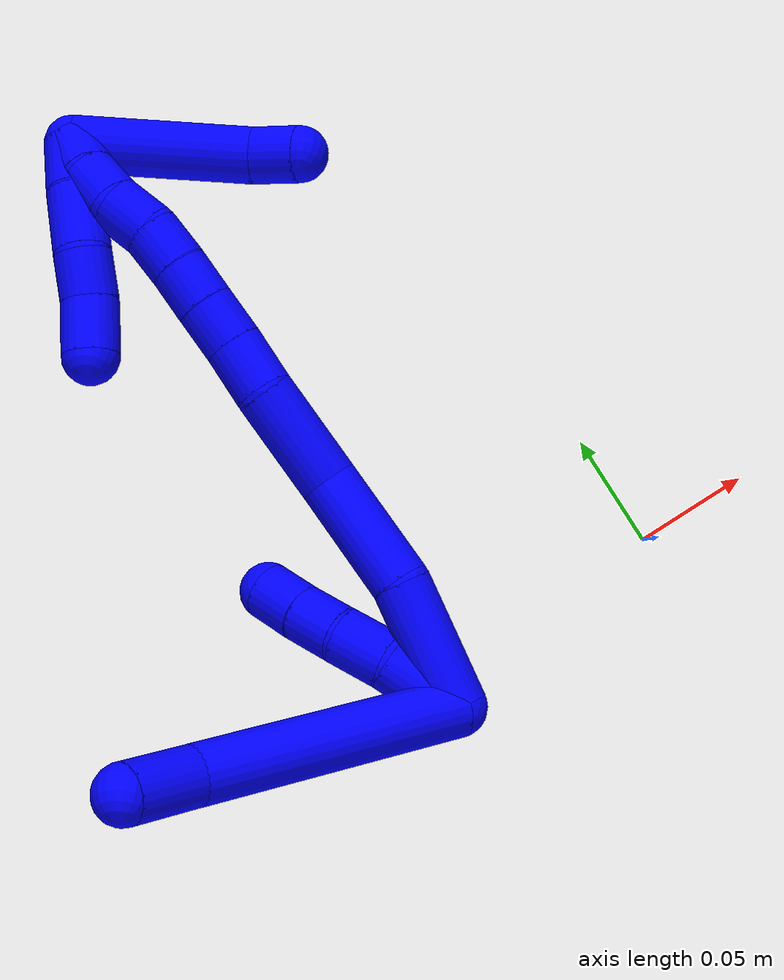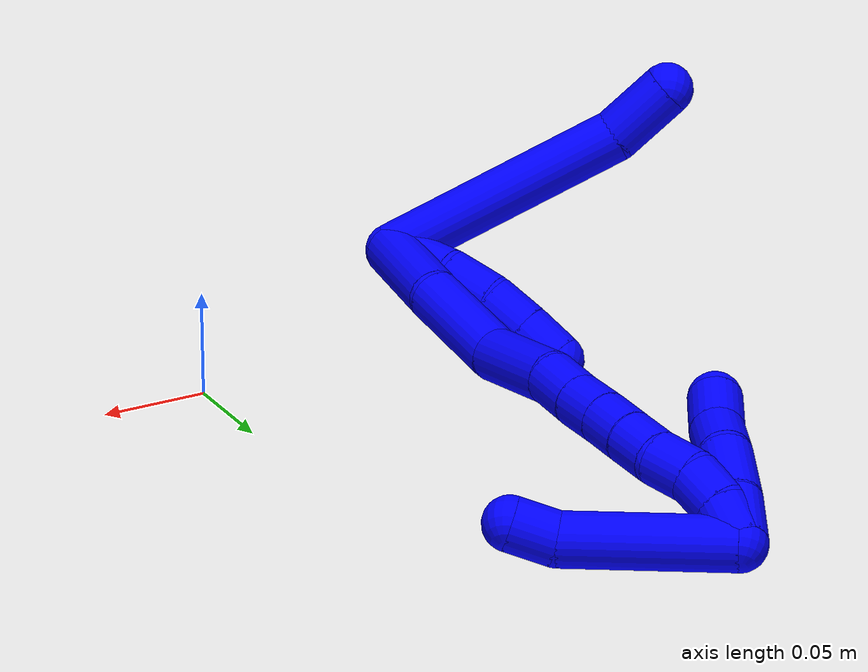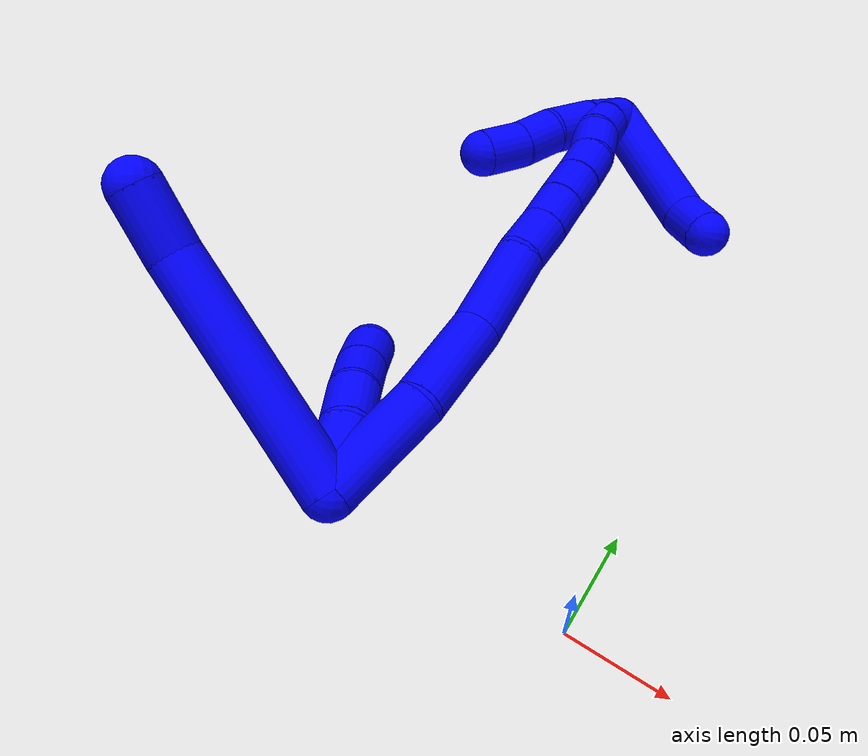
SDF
<sdf version="1.7">
 <world name="default">
  <model name="1">
   <static>0</static>
   <link name="1">
    <collision name="collision-cylinder-e_1_2_8">
     <pose>0.020605 0.04897 0.02482 -1.1017 0.359047 -0.222037</pose>
     <geometry><cylinder><radius>0.0125</radius><length>0.11728</length></cylinder></geometry>
     <surface>
      <friction><ode><mu>1.16</mu><mu2>1.16</mu2><slip1>0</slip1><slip2>0</slip2></ode></friction>
      <contact><ode><kp>1e+06</kp><kd>1</kd><max_vel>0</max_vel><min_depth>0.001</min_depth></ode></contact>
     </surface>
    </collision>
    <visual name="visual-cylinder-e_1_2_8">
     <pose>0.020605 0.04897 0.02482 -1.1017 0.359047 -0.222037</pose>
     <geometry><cylinder><radius>0.0125</radius><length>0.11728</length></cylinder></geometry>
     <material><ambient>0 0 1 1</ambient></material>
    </visual>
    <collision name="collision-cylinder-e_2_8_6">
     <pose>0.050462 0.108729 0.057743 -0.926556 0.601057 -0.30719</pose>
     <geometry><cylinder><radius>0.0125</radius><length>0.03272</length></cylinder></geometry>
     <surface>
      <friction><ode><mu>1.16</mu><mu2>1.16</mu2><slip1>0</slip1><slip2>0</slip2></ode></friction>
      <contact><ode><kp>1e+06</kp><kd>1</kd><max_vel>0</max_vel><min_depth>0.001</min_depth></ode></contact>
     </surface>
    </collision>
    <visual name="visual-cylinder-e_2_8_6">
     <pose>0.050462 0.108729 0.057743 -0.926556 0.601057 -0.30719</pose>
     <geometry><cylinder><radius>0.0125</radius><length>0.03272</length></cylinder></geometry>
     <material><ambient>0 0 1 1</ambient></material>
    </visual>
    <collision name="collision-cylinder-e_1_2_9">
     <pose>0.004299 0.013868 -0.008409 -2.1159 0.259141 -0.454793</pose>
     <geometry><cylinder><radius>0.0125</radius><length>0.033556</length></cylinder></geometry>
     <surface>
      <friction><ode><mu>1.16</mu><mu2>1.16</mu2><slip1>0</slip1><slip2>0</slip2></ode></friction>
      <contact><ode><kp>1e+06</kp><kd>1</kd><max_vel>0</max_vel><min_depth>0.001</min_depth></ode></contact>
     </surface>
    </collision>
    <visual name="visual-cylinder-e_1_2_9">
     <pose>0.004299 0.013868 -0.008409 -2.1159 0.259141 -0.454793</pose>
     <geometry><cylinder><radius>0.0125</radius><length>0.033556</length></cylinder></geometry>
     <material><ambient>0 0 1 1</ambient></material>
    </visual>
    <collision name="collision-cylinder-e_2_9_10">
     <pose>0.009053 0.037991 -0.022993 -2.11271 0.037952 -0.06713</pose>
     <geometry><cylinder><radius>0.0125</radius><length>0.023959</length></cylinder></geometry>
     <surface>
      <friction><ode><mu>1.16</mu><mu2>1.16</mu2><slip1>0</slip1><slip2>0</slip2></ode></friction>
      <contact><ode><kp>1e+06</kp><kd>1</kd><max_vel>0</max_vel><min_depth>0.001</min_depth></ode></contact>
     </surface>
    </collision>
    <visual name="visual-cylinder-e_2_9_10">
     <pose>0.009053 0.037991 -0.022993 -2.11271 0.037952 -0.06713</pose>
     <geometry><cylinder><radius>0.0125</radius><length>0.023959</length></cylinder></geometry>
     <material><ambient>0 0 1 1</ambient></material>
    </visual>
    <collision name="collision-cylinder-e_3_10_11">
     <pose>0.008209 0.05689 -0.035382 -2.19418 -0.121392 0.235988</pose>
     <geometry><cylinder><radius>0.0125</radius><length>0.021449</length></cylinder></geometry>
     <surface>
      <friction><ode><mu>1.16</mu><mu2>1.16</mu2><slip1>0</slip1><slip2>0</slip2></ode></friction>
      <contact><ode><kp>1e+06</kp><kd>1</kd><max_vel>0</max_vel><min_depth>0.001</min_depth></ode></contact>
     </surface>
    </collision>
    <visual name="visual-cylinder-e_3_10_11">
     <pose>0.008209 0.05689 -0.035382 -2.19418 -0.121392 0.235988</pose>
     <geometry><cylinder><radius>0.0125</radius><length>0.021449</length></cylinder></geometry>
     <material><ambient>0 0 1 1</ambient></material>
    </visual>
    <collision name="collision-cylinder-e_4_11_5">
     <pose>0.005617 0.073645 -0.048165 -2.25149 -0.123341 0.257491</pose>
     <geometry><cylinder><radius>0.0125</radius><length>0.021035</length></cylinder></geometry>
     <surface>
      <friction><ode><mu>1.16</mu><mu2>1.16</mu2><slip1>0</slip1><slip2>0</slip2></ode></friction>
      <contact><ode><kp>1e+06</kp><kd>1</kd><max_vel>0</max_vel><min_depth>0.001</min_depth></ode></contact>
     </surface>
    </collision>
    <visual name="visual-cylinder-e_4_11_5">
     <pose>0.005617 0.073645 -0.048165 -2.25149 -0.123341 0.257491</pose>
     <geometry><cylinder><radius>0.0125</radius><length>0.021035</length></cylinder></geometry>
     <material><ambient>0 0 1 1</ambient></material>
    </visual>
    <collision name="collision-cylinder-e_1_2_12">
     <pose>0.014008 0.011049 -0.021354 -2.66411 0.527549 -1.67464</pose>
     <geometry><cylinder><radius>0.0125</radius><length>0.055652</length></cylinder></geometry>
     <surface>
      <friction><ode><mu>1.16</mu><mu2>1.16</mu2><slip1>0</slip1><slip2>0</slip2></ode></friction>
      <contact><ode><kp>1e+06</kp><kd>1</kd><max_vel>0</max_vel><min_depth>0.001</min_depth></ode></contact>
     </surface>
    </collision>
    <visual name="visual-cylinder-e_1_2_12">
     <pose>0.014008 0.011049 -0.021354 -2.66411 0.527549 -1.67464</pose>
     <geometry><cylinder><radius>0.0125</radius><length>0.055652</length></cylinder></geometry>
     <material><ambient>0 0 1 1</ambient></material>
    </visual>
    <collision name="collision-cylinder-e_2_12_13">
     <pose>0.036424 0.037188 -0.062841 -2.49841 0.322484 -0.90836</pose>
     <geometry><cylinder><radius>0.0125</radius><length>0.053058</length></cylinder></geometry>
     <surface>
      <friction><ode><mu>1.16</mu><mu2>1.16</mu2><slip1>0</slip1><slip2>0</slip2></ode></friction>
      <contact><ode><kp>1e+06</kp><kd>1</kd><max_vel>0</max_vel><min_depth>0.001</min_depth></ode></contact>
     </surface>
    </collision>
    <visual name="visual-cylinder-e_2_12_13">
     <pose>0.036424 0.037188 -0.062841 -2.49841 0.322484 -0.90836</pose>
     <geometry><cylinder><radius>0.0125</radius><length>0.053058</length></cylinder></geometry>
     <material><ambient>0 0 1 1</ambient></material>
    </visual>
    <collision name="collision-cylinder-e_3_13_14">
     <pose>0.058412 0.065006 -0.096895 -2.40091 0.624032 -1.38644</pose>
     <geometry><cylinder><radius>0.0125</radius><length>0.046484</length></cylinder></geometry>
     <surface>
      <friction><ode><mu>1.16</mu><mu2>1.16</mu2><slip1>0</slip1><slip2>0</slip2></ode></friction>
      <contact><ode><kp>1e+06</kp><kd>1</kd><max_vel>0</max_vel><min_depth>0.001</min_depth></ode></contact>
     </surface>
    </collision>
    <visual name="visual-cylinder-e_3_13_14">
     <pose>0.058412 0.065006 -0.096895 -2.40091 0.624032 -1.38644</pose>
     <geometry><cylinder><radius>0.0125</radius><length>0.046484</length></cylinder></geometry>
     <material><ambient>0 0 1 1</ambient></material>
    </visual>
    <collision name="collision-cylinder-e_4_14_15">
     <pose>0.077005 0.084006 -0.119395 -2.51032 0.440654 -1.20231</pose>
     <geometry><cylinder><radius>0.0125</radius><length>0.023501</length></cylinder></geometry>
     <surface>
      <friction><ode><mu>1.16</mu><mu2>1.16</mu2><slip1>0</slip1><slip2>0</slip2></ode></friction>
      <contact><ode><kp>1e+06</kp><kd>1</kd><max_vel>0</max_vel><min_depth>0.001</min_depth></ode></contact>
     </surface>
    </collision>
    <visual name="visual-cylinder-e_4_14_15">
     <pose>0.077005 0.084006 -0.119395 -2.51032 0.440654 -1.20231</pose>
     <geometry><cylinder><radius>0.0125</radius><length>0.023501</length></cylinder></geometry>
     <material><ambient>0 0 1 1</ambient></material>
    </visual>
    <collision name="collision-cylinder-e_5_15_16">
     <pose>0.086666 0.096136 -0.135096 -2.45321 0.467024 -1.17167</pose>
     <geometry><cylinder><radius>0.0125</radius><length>0.020653</length></cylinder></geometry>
     <surface>
      <friction><ode><mu>1.16</mu><mu2>1.16</mu2><slip1>0</slip1><slip2>0</slip2></ode></friction>
      <contact><ode><kp>1e+06</kp><kd>1</kd><max_vel>0</max_vel><min_depth>0.001</min_depth></ode></contact>
     </surface>
    </collision>
    <visual name="visual-cylinder-e_5_15_16">
     <pose>0.086666 0.096136 -0.135096 -2.45321 0.467024 -1.17167</pose>
     <geometry><cylinder><radius>0.0125</radius><length>0.020653</length></cylinder></geometry>
     <material><ambient>0 0 1 1</ambient></material>
    </visual>
    <collision name="collision-cylinder-e_6_16_17">
     <pose>0.095617 0.107611 -0.14933 -2.47319 0.443149 -1.15104</pose>
     <geometry><cylinder><radius>0.0125</radius><length>0.020065</length></cylinder></geometry>
     <surface>
      <friction><ode><mu>1.16</mu><mu2>1.16</mu2><slip1>0</slip1><slip2>0</slip2></ode></friction>
      <contact><ode><kp>1e+06</kp><kd>1</kd><max_vel>0</max_vel><min_depth>0.001</min_depth></ode></contact>
     </surface>
    </collision>
    <visual name="visual-cylinder-e_6_16_17">
     <pose>0.095617 0.107611 -0.14933 -2.47319 0.443149 -1.15104</pose>
     <geometry><cylinder><radius>0.0125</radius><length>0.020065</length></cylinder></geometry>
     <material><ambient>0 0 1 1</ambient></material>
    </visual>
    <collision name="collision-cylinder-e_7_17_18">
     <pose>0.103767 0.119257 -0.163432 -2.42976 0.395033 -0.987692</pose>
     <geometry><cylinder><radius>0.0125</radius><length>0.02</length></cylinder></geometry>
     <surface>
      <friction><ode><mu>1.16</mu><mu2>1.16</mu2><slip1>0</slip1><slip2>0</slip2></ode></friction>
      <contact><ode><kp>1e+06</kp><kd>1</kd><max_vel>0</max_vel><min_depth>0.001</min_depth></ode></contact>
     </surface>
    </collision>
    <visual name="visual-cylinder-e_7_17_18">
     <pose>0.103767 0.119257 -0.163432 -2.42976 0.395033 -0.987692</pose>
     <geometry><cylinder><radius>0.0125</radius><length>0.02</length></cylinder></geometry>
     <material><ambient>0 0 1 1</ambient></material>
    </visual>
    <collision name="collision-cylinder-e_8_18_19">
     <pose>0.110499 0.133209 -0.176259 -2.20598 0.284974 -0.553354</pose>
     <geometry><cylinder><radius>0.0125</radius><length>0.02051</length></cylinder></geometry>
     <surface>
      <friction><ode><mu>1.16</mu><mu2>1.16</mu2><slip1>0</slip1><slip2>0</slip2></ode></friction>
      <contact><ode><kp>1e+06</kp><kd>1</kd><max_vel>0</max_vel><min_depth>0.001</min_depth></ode></contact>
     </surface>
    </collision>
    <visual name="visual-cylinder-e_8_18_19">
     <pose>0.110499 0.133209 -0.176259 -2.20598 0.284974 -0.553354</pose>
     <geometry><cylinder><radius>0.0125</radius><length>0.02051</length></cylinder></geometry>
     <material><ambient>0 0 1 1</ambient></material>
    </visual>
    <collision name="collision-cylinder-e_9_19_20">
     <pose>0.114701 0.147438 -0.189763 -2.45298 0.13211 -0.364849</pose>
     <geometry><cylinder><radius>0.0125</radius><length>0.020027</length></cylinder></geometry>
     <surface>
      <friction><ode><mu>1.16</mu><mu2>1.16</mu2><slip1>0</slip1><slip2>0</slip2></ode></friction>
      <contact><ode><kp>1e+06</kp><kd>1</kd><max_vel>0</max_vel><min_depth>0.001</min_depth></ode></contact>
     </surface>
    </collision>
    <visual name="visual-cylinder-e_9_19_20">
     <pose>0.114701 0.147438 -0.189763 -2.45298 0.13211 -0.364849</pose>
     <geometry><cylinder><radius>0.0125</radius><length>0.020027</length></cylinder></geometry>
     <material><ambient>0 0 1 1</ambient></material>
    </visual>
    <collision name="collision-cylinder-e_10_20_1">
     <pose>0.116206 0.158238 -0.206387 -2.67684 0.018581 -0.078476</pose>
     <geometry><cylinder><radius>0.0125</radius><length>0.02005</length></cylinder></geometry>
     <surface>
      <friction><ode><mu>1.16</mu><mu2>1.16</mu2><slip1>0</slip1><slip2>0</slip2></ode></friction>
      <contact><ode><kp>1e+06</kp><kd>1</kd><max_vel>0</max_vel><min_depth>0.001</min_depth></ode></contact>
     </surface>
    </collision>
    <visual name="visual-cylinder-e_10_20_1">
     <pose>0.116206 0.158238 -0.206387 -2.67684 0.018581 -0.078476</pose>
     <geometry><cylinder><radius>0.0125</radius><length>0.02005</length></cylinder></geometry>
     <material><ambient>0 0 1 1</ambient></material>
    </visual>
    <collision name="collision-cylinder-e_1_1_21">
     <pose>0.114046 0.161091 -0.202998 0.132026 -0.186203 -0.012345</pose>
     <geometry><cylinder><radius>0.0125</radius><length>0.025353</length></cylinder></geometry>
     <surface>
      <friction><ode><mu>1.16</mu><mu2>1.16</mu2><slip1>0</slip1><slip2>0</slip2></ode></friction>
      <contact><ode><kp>1e+06</kp><kd>1</kd><max_vel>0</max_vel><min_depth>0.001</min_depth></ode></contact>
     </surface>
    </collision>
    <visual name="visual-cylinder-e_1_1_21">
     <pose>0.114046 0.161091 -0.202998 0.132026 -0.186203 -0.012345</pose>
     <geometry><cylinder><radius>0.0125</radius><length>0.025353</length></cylinder></geometry>
     <material><ambient>0 0 1 1</ambient></material>
    </visual>
    <collision name="collision-cylinder-e_2_21_22">
     <pose>0.107831 0.156957 -0.176677 0.176627 -0.266032 -0.023694</pose>
     <geometry><cylinder><radius>0.0125</radius><length>0.02942</length></cylinder></geometry>
     <surface>
      <friction><ode><mu>1.16</mu><mu2>1.16</mu2><slip1>0</slip1><slip2>0</slip2></ode></friction>
      <contact><ode><kp>1e+06</kp><kd>1</kd><max_vel>0</max_vel><min_depth>0.001</min_depth></ode></contact>
     </surface>
    </collision>
    <visual name="visual-cylinder-e_2_21_22">
     <pose>0.107831 0.156957 -0.176677 0.176627 -0.266032 -0.023694</pose>
     <geometry><cylinder><radius>0.0125</radius><length>0.02942</length></cylinder></geometry>
     <material><ambient>0 0 1 1</ambient></material>
    </visual>
    <collision name="collision-cylinder-e_3_22_23">
     <pose>0.099045 0.152829 -0.153506 0.175837 -0.484654 -0.04357</pose>
     <geometry><cylinder><radius>0.0125</radius><length>0.021118</length></cylinder></geometry>
     <surface>
      <friction><ode><mu>1.16</mu><mu2>1.16</mu2><slip1>0</slip1><slip2>0</slip2></ode></friction>
      <contact><ode><kp>1e+06</kp><kd>1</kd><max_vel>0</max_vel><min_depth>0.001</min_depth></ode></contact>
     </surface>
    </collision>
    <visual name="visual-cylinder-e_3_22_23">
     <pose>0.099045 0.152829 -0.153506 0.175837 -0.484654 -0.04357</pose>
     <geometry><cylinder><radius>0.0125</radius><length>0.021118</length></cylinder></geometry>
     <material><ambient>0 0 1 1</ambient></material>
    </visual>
    <collision name="collision-cylinder-e_4_23_4">
     <pose>0.089818 0.150546 -0.133068 0.057617 -0.365404 -0.010648</pose>
     <geometry><cylinder><radius>0.0125</radius><length>0.024109</length></cylinder></geometry>
     <surface>
      <friction><ode><mu>1.16</mu><mu2>1.16</mu2><slip1>0</slip1><slip2>0</slip2></ode></friction>
      <contact><ode><kp>1e+06</kp><kd>1</kd><max_vel>0</max_vel><min_depth>0.001</min_depth></ode></contact>
     </surface>
    </collision>
    <visual name="visual-cylinder-e_4_23_4">
     <pose>0.089818 0.150546 -0.133068 0.057617 -0.365404 -0.010648</pose>
     <geometry><cylinder><radius>0.0125</radius><length>0.024109</length></cylinder></geometry>
     <material><ambient>0 0 1 1</ambient></material>
    </visual>
    <collision name="collision-cylinder-e_1_1_24">
     <pose>0.110425 0.123927 -0.215348 1.57082 -0.15258 -0.152583</pose>
     <geometry><cylinder><radius>0.0125</radius><length>0.07852</length></cylinder></geometry>
     <surface>
      <friction><ode><mu>1.16</mu><mu2>1.16</mu2><slip1>0</slip1><slip2>0</slip2></ode></friction>
      <contact><ode><kp>1e+06</kp><kd>1</kd><max_vel>0</max_vel><min_depth>0.001</min_depth></ode></contact>
     </surface>
    </collision>
    <visual name="visual-cylinder-e_1_1_24">
     <pose>0.110425 0.123927 -0.215348 1.57082 -0.15258 -0.152583</pose>
     <geometry><cylinder><radius>0.0125</radius><length>0.07852</length></cylinder></geometry>
     <material><ambient>0 0 1 1</ambient></material>
    </visual>
    <collision name="collision-cylinder-e_2_24_3">
     <pose>0.10604 0.074635 -0.213659 1.41099 0.147837 0.12598</pose>
     <geometry><cylinder><radius>0.0125</radius><length>0.02148</length></cylinder></geometry>
     <surface>
      <friction><ode><mu>1.16</mu><mu2>1.16</mu2><slip1>0</slip1><slip2>0</slip2></ode></friction>
      <contact><ode><kp>1e+06</kp><kd>1</kd><max_vel>0</max_vel><min_depth>0.001</min_depth></ode></contact>
     </surface>
    </collision>
    <visual name="visual-cylinder-e_2_24_3">
     <pose>0.10604 0.074635 -0.213659 1.41099 0.147837 0.12598</pose>
     <geometry><cylinder><radius>0.0125</radius><length>0.02148</length></cylinder></geometry>
     <material><ambient>0 0 1 1</ambient></material>
    </visual>
    <collision name="collision-sphere-3">
     <pose>0.107622 0.064148 -0.211968 0 -0 0</pose>
     <geometry><sphere><radius>0.0125</radius></sphere></geometry>
     <surface>
      <friction><ode><mu>1.16</mu><mu2>1.16</mu2><slip1>0</slip1><slip2>0</slip2></ode></friction>
      <contact><ode><kp>1e+06</kp><kd>1</kd><max_vel>0</max_vel><min_depth>0.001</min_depth></ode></contact>
     </surface>
    </collision>
    <visual name="visual-sphere-3">
     <pose>0.107622 0.064148 -0.211968 0 -0 0</pose>
     <geometry><sphere><radius>0.0125</radius></sphere></geometry>
     <material><ambient>0 0 1 1</ambient></material>
    </visual>
    <collision name="collision-sphere-24">
     <pose>0.104458 0.085123 -0.215349 0 -0 0</pose>
     <geometry><sphere><radius>0.0125</radius></sphere></geometry>
     <surface>
      <friction><ode><mu>1.16</mu><mu2>1.16</mu2><slip1>0</slip1><slip2>0</slip2></ode></friction>
      <contact><ode><kp>1e+06</kp><kd>1</kd><max_vel>0</max_vel><min_depth>0.001</min_depth></ode></contact>
     </surface>
    </collision>
    <visual name="visual-sphere-24">
     <pose>0.104458 0.085123 -0.215349 0 -0 0</pose>
     <geometry><sphere><radius>0.0125</radius></sphere></geometry>
     <material><ambient>0 0 1 1</ambient></material>
    </visual>
    <collision name="collision-sphere-4">
     <pose>0.085511 0.149898 -0.121828 0 -0 0</pose>
     <geometry><sphere><radius>0.0125</radius></sphere></geometry>
     <surface>
      <friction><ode><mu>1.16</mu><mu2>1.16</mu2><slip1>0</slip1><slip2>0</slip2></ode></friction>
      <contact><ode><kp>1e+06</kp><kd>1</kd><max_vel>0</max_vel><min_depth>0.001</min_depth></ode></contact>
     </surface>
    </collision>
    <visual name="visual-sphere-4">
     <pose>0.085511 0.149898 -0.121828 0 -0 0</pose>
     <geometry><sphere><radius>0.0125</radius></sphere></geometry>
     <material><ambient>0 0 1 1</ambient></material>
    </visual>
    <collision name="collision-sphere-23">
     <pose>0.094125 0.151194 -0.144307 0 -0 0</pose>
     <geometry><sphere><radius>0.0125</radius></sphere></geometry>
     <surface>
      <friction><ode><mu>1.16</mu><mu2>1.16</mu2><slip1>0</slip1><slip2>0</slip2></ode></friction>
      <contact><ode><kp>1e+06</kp><kd>1</kd><max_vel>0</max_vel><min_depth>0.001</min_depth></ode></contact>
     </surface>
    </collision>
    <visual name="visual-sphere-23">
     <pose>0.094125 0.151194 -0.144307 0 -0 0</pose>
     <geometry><sphere><radius>0.0125</radius></sphere></geometry>
     <material><ambient>0 0 1 1</ambient></material>
    </visual>
    <collision name="collision-sphere-22">
     <pose>0.103964 0.154463 -0.162705 0 -0 0</pose>
     <geometry><sphere><radius>0.0125</radius></sphere></geometry>
     <surface>
      <friction><ode><mu>1.16</mu><mu2>1.16</mu2><slip1>0</slip1><slip2>0</slip2></ode></friction>
      <contact><ode><kp>1e+06</kp><kd>1</kd><max_vel>0</max_vel><min_depth>0.001</min_depth></ode></contact>
     </surface>
    </collision>
    <visual name="visual-sphere-22">
     <pose>0.103964 0.154463 -0.162705 0 -0 0</pose>
     <geometry><sphere><radius>0.0125</radius></sphere></geometry>
     <material><ambient>0 0 1 1</ambient></material>
    </visual>
    <collision name="collision-sphere-21">
     <pose>0.111699 0.159451 -0.190649 0 -0 0</pose>
     <geometry><sphere><radius>0.0125</radius></sphere></geometry>
     <surface>
      <friction><ode><mu>1.16</mu><mu2>1.16</mu2><slip1>0</slip1><slip2>0</slip2></ode></friction>
      <contact><ode><kp>1e+06</kp><kd>1</kd><max_vel>0</max_vel><min_depth>0.001</min_depth></ode></contact>
     </surface>
    </collision>
    <visual name="visual-sphere-21">
     <pose>0.111699 0.159451 -0.190649 0 -0 0</pose>
     <geometry><sphere><radius>0.0125</radius></sphere></geometry>
     <material><ambient>0 0 1 1</ambient></material>
    </visual>
    <collision name="collision-sphere-1">
     <pose>0.116392 0.162731 -0.215347 0 -0 0</pose>
     <geometry><sphere><radius>0.0125</radius></sphere></geometry>
     <surface>
      <friction><ode><mu>1.16</mu><mu2>1.16</mu2><slip1>0</slip1><slip2>0</slip2></ode></friction>
      <contact><ode><kp>1e+06</kp><kd>1</kd><max_vel>0</max_vel><min_depth>0.001</min_depth></ode></contact>
     </surface>
    </collision>
    <visual name="visual-sphere-1">
     <pose>0.116392 0.162731 -0.215347 0 -0 0</pose>
     <geometry><sphere><radius>0.0125</radius></sphere></geometry>
     <material><ambient>0 0 1 1</ambient></material>
    </visual>
    <collision name="collision-sphere-11">
     <pose>0.006911 0.065533 -0.041597 0 -0 0</pose>
     <geometry><sphere><radius>0.0125</radius></sphere></geometry>
     <surface>
      <friction><ode><mu>1.16</mu><mu2>1.16</mu2><slip1>0</slip1><slip2>0</slip2></ode></friction>
      <contact><ode><kp>1e+06</kp><kd>1</kd><max_vel>0</max_vel><min_depth>0.001</min_depth></ode></contact>
     </surface>
    </collision>
    <visual name="visual-sphere-11">
     <pose>0.006911 0.065533 -0.041597 0 -0 0</pose>
     <geometry><sphere><radius>0.0125</radius></sphere></geometry>
     <material><ambient>0 0 1 1</ambient></material>
    </visual>
    <collision name="collision-sphere-10">
     <pose>0.009508 0.048247 -0.029167 0 -0 0</pose>
     <geometry><sphere><radius>0.0125</radius></sphere></geometry>
     <surface>
      <friction><ode><mu>1.16</mu><mu2>1.16</mu2><slip1>0</slip1><slip2>0</slip2></ode></friction>
      <contact><ode><kp>1e+06</kp><kd>1</kd><max_vel>0</max_vel><min_depth>0.001</min_depth></ode></contact>
     </surface>
    </collision>
    <visual name="visual-sphere-10">
     <pose>0.009508 0.048247 -0.029167 0 -0 0</pose>
     <geometry><sphere><radius>0.0125</radius></sphere></geometry>
     <material><ambient>0 0 1 1</ambient></material>
    </visual>
    <collision name="collision-sphere-6">
     <pose>0.059714 0.119517 0.065846 0 -0 0</pose>
     <geometry><sphere><radius>0.0125</radius></sphere></geometry>
     <surface>
      <friction><ode><mu>1.16</mu><mu2>1.16</mu2><slip1>0</slip1><slip2>0</slip2></ode></friction>
      <contact><ode><kp>1e+06</kp><kd>1</kd><max_vel>0</max_vel><min_depth>0.001</min_depth></ode></contact>
     </surface>
    </collision>
    <visual name="visual-sphere-6">
     <pose>0.059714 0.119517 0.065846 0 -0 0</pose>
     <geometry><sphere><radius>0.0125</radius></sphere></geometry>
     <material><ambient>0 0 1 1</ambient></material>
    </visual>
    <collision name="collision-sphere-9">
     <pose>0.008599 0.027735 -0.016818 0 -0 0</pose>
     <geometry><sphere><radius>0.0125</radius></sphere></geometry>
     <surface>
      <friction><ode><mu>1.16</mu><mu2>1.16</mu2><slip1>0</slip1><slip2>0</slip2></ode></friction>
      <contact><ode><kp>1e+06</kp><kd>1</kd><max_vel>0</max_vel><min_depth>0.001</min_depth></ode></contact>
     </surface>
    </collision>
    <visual name="visual-sphere-9">
     <pose>0.008599 0.027735 -0.016818 0 -0 0</pose>
     <geometry><sphere><radius>0.0125</radius></sphere></geometry>
     <material><ambient>0 0 1 1</ambient></material>
    </visual>
    <collision name="collision-sphere-2">
     <geometry><sphere><radius>0.0125</radius></sphere></geometry>
     <surface>
      <friction><ode><mu>1.16</mu><mu2>1.16</mu2><slip1>0</slip1><slip2>0</slip2></ode></friction>
      <contact><ode><kp>1e+06</kp><kd>1</kd><max_vel>0</max_vel><min_depth>0.001</min_depth></ode></contact>
     </surface>
    </collision>
    <visual name="visual-sphere-2">
     <geometry><sphere><radius>0.0125</radius></sphere></geometry>
     <material><ambient>0 0 1 1</ambient></material>
    </visual>
    <collision name="collision-sphere-19">
     <pose>0.113382 0.14113 -0.182098 0 -0 0</pose>
     <geometry><sphere><radius>0.0125</radius></sphere></geometry>
     <surface>
      <friction><ode><mu>1.16</mu><mu2>1.16</mu2><slip1>0</slip1><slip2>0</slip2></ode></friction>
      <contact><ode><kp>1e+06</kp><kd>1</kd><max_vel>0</max_vel><min_depth>0.001</min_depth></ode></contact>
     </surface>
    </collision>
    <visual name="visual-sphere-19">
     <pose>0.113382 0.14113 -0.182098 0 -0 0</pose>
     <geometry><sphere><radius>0.0125</radius></sphere></geometry>
     <material><ambient>0 0 1 1</ambient></material>
    </visual>
    <collision name="collision-sphere-8">
     <pose>0.04121 0.097941 0.049639 0 -0 0</pose>
     <geometry><sphere><radius>0.0125</radius></sphere></geometry>
     <surface>
      <friction><ode><mu>1.16</mu><mu2>1.16</mu2><slip1>0</slip1><slip2>0</slip2></ode></friction>
      <contact><ode><kp>1e+06</kp><kd>1</kd><max_vel>0</max_vel><min_depth>0.001</min_depth></ode></contact>
     </surface>
    </collision>
    <visual name="visual-sphere-8">
     <pose>0.04121 0.097941 0.049639 0 -0 0</pose>
     <geometry><sphere><radius>0.0125</radius></sphere></geometry>
     <material><ambient>0 0 1 1</ambient></material>
    </visual>
    <collision name="collision-sphere-5">
     <pose>0.004323 0.081756 -0.054734 0 -0 0</pose>
     <geometry><sphere><radius>0.0125</radius></sphere></geometry>
     <surface>
      <friction><ode><mu>1.16</mu><mu2>1.16</mu2><slip1>0</slip1><slip2>0</slip2></ode></friction>
      <contact><ode><kp>1e+06</kp><kd>1</kd><max_vel>0</max_vel><min_depth>0.001</min_depth></ode></contact>
     </surface>
    </collision>
    <visual name="visual-sphere-5">
     <pose>0.004323 0.081756 -0.054734 0 -0 0</pose>
     <geometry><sphere><radius>0.0125</radius></sphere></geometry>
     <material><ambient>0 0 1 1</ambient></material>
    </visual>
    <collision name="collision-sphere-12">
     <pose>0.028016 0.022097 -0.042707 0 -0 0</pose>
     <geometry><sphere><radius>0.0125</radius></sphere></geometry>
     <surface>
      <friction><ode><mu>1.16</mu><mu2>1.16</mu2><slip1>0</slip1><slip2>0</slip2></ode></friction>
      <contact><ode><kp>1e+06</kp><kd>1</kd><max_vel>0</max_vel><min_depth>0.001</min_depth></ode></contact>
     </surface>
    </collision>
    <visual name="visual-sphere-12">
     <pose>0.028016 0.022097 -0.042707 0 -0 0</pose>
     <geometry><sphere><radius>0.0125</radius></sphere></geometry>
     <material><ambient>0 0 1 1</ambient></material>
    </visual>
    <collision name="collision-sphere-13">
     <pose>0.044831 0.052278 -0.082975 0 -0 0</pose>
     <geometry><sphere><radius>0.0125</radius></sphere></geometry>
     <surface>
      <friction><ode><mu>1.16</mu><mu2>1.16</mu2><slip1>0</slip1><slip2>0</slip2></ode></friction>
      <contact><ode><kp>1e+06</kp><kd>1</kd><max_vel>0</max_vel><min_depth>0.001</min_depth></ode></contact>
     </surface>
    </collision>
    <visual name="visual-sphere-13">
     <pose>0.044831 0.052278 -0.082975 0 -0 0</pose>
     <geometry><sphere><radius>0.0125</radius></sphere></geometry>
     <material><ambient>0 0 1 1</ambient></material>
    </visual>
    <collision name="collision-sphere-14">
     <pose>0.071993 0.077734 -0.110815 0 -0 0</pose>
     <geometry><sphere><radius>0.0125</radius></sphere></geometry>
     <surface>
      <friction><ode><mu>1.16</mu><mu2>1.16</mu2><slip1>0</slip1><slip2>0</slip2></ode></friction>
      <contact><ode><kp>1e+06</kp><kd>1</kd><max_vel>0</max_vel><min_depth>0.001</min_depth></ode></contact>
     </surface>
    </collision>
    <visual name="visual-sphere-14">
     <pose>0.071993 0.077734 -0.110815 0 -0 0</pose>
     <geometry><sphere><radius>0.0125</radius></sphere></geometry>
     <material><ambient>0 0 1 1</ambient></material>
    </visual>
    <collision name="collision-sphere-15">
     <pose>0.082016 0.090279 -0.127975 0 -0 0</pose>
     <geometry><sphere><radius>0.0125</radius></sphere></geometry>
     <surface>
      <friction><ode><mu>1.16</mu><mu2>1.16</mu2><slip1>0</slip1><slip2>0</slip2></ode></friction>
      <contact><ode><kp>1e+06</kp><kd>1</kd><max_vel>0</max_vel><min_depth>0.001</min_depth></ode></contact>
     </surface>
    </collision>
    <visual name="visual-sphere-15">
     <pose>0.082016 0.090279 -0.127975 0 -0 0</pose>
     <geometry><sphere><radius>0.0125</radius></sphere></geometry>
     <material><ambient>0 0 1 1</ambient></material>
    </visual>
    <collision name="collision-sphere-16">
     <pose>0.091315 0.101994 -0.142217 0 -0 0</pose>
     <geometry><sphere><radius>0.0125</radius></sphere></geometry>
     <surface>
      <friction><ode><mu>1.16</mu><mu2>1.16</mu2><slip1>0</slip1><slip2>0</slip2></ode></friction>
      <contact><ode><kp>1e+06</kp><kd>1</kd><max_vel>0</max_vel><min_depth>0.001</min_depth></ode></contact>
     </surface>
    </collision>
    <visual name="visual-sphere-16">
     <pose>0.091315 0.101994 -0.142217 0 -0 0</pose>
     <geometry><sphere><radius>0.0125</radius></sphere></geometry>
     <material><ambient>0 0 1 1</ambient></material>
    </visual>
    <collision name="collision-sphere-17">
     <pose>0.099919 0.113228 -0.156443 0 -0 0</pose>
     <geometry><sphere><radius>0.0125</radius></sphere></geometry>
     <surface>
      <friction><ode><mu>1.16</mu><mu2>1.16</mu2><slip1>0</slip1><slip2>0</slip2></ode></friction>
      <contact><ode><kp>1e+06</kp><kd>1</kd><max_vel>0</max_vel><min_depth>0.001</min_depth></ode></contact>
     </surface>
    </collision>
    <visual name="visual-sphere-17">
     <pose>0.099919 0.113228 -0.156443 0 -0 0</pose>
     <geometry><sphere><radius>0.0125</radius></sphere></geometry>
     <material><ambient>0 0 1 1</ambient></material>
    </visual>
    <collision name="collision-sphere-18">
     <pose>0.107616 0.125287 -0.17042 0 -0 0</pose>
     <geometry><sphere><radius>0.0125</radius></sphere></geometry>
     <surface>
      <friction><ode><mu>1.16</mu><mu2>1.16</mu2><slip1>0</slip1><slip2>0</slip2></ode></friction>
      <contact><ode><kp>1e+06</kp><kd>1</kd><max_vel>0</max_vel><min_depth>0.001</min_depth></ode></contact>
     </surface>
    </collision>
    <visual name="visual-sphere-18">
     <pose>0.107616 0.125287 -0.17042 0 -0 0</pose>
     <geometry><sphere><radius>0.0125</radius></sphere></geometry>
     <material><ambient>0 0 1 1</ambient></material>
    </visual>
    <collision name="collision-sphere-20">
     <pose>0.11602 0.153746 -0.197427 0 -0 0</pose>
     <geometry><sphere><radius>0.0125</radius></sphere></geometry>
     <surface>
      <friction><ode><mu>1.16</mu><mu2>1.16</mu2><slip1>0</slip1><slip2>0</slip2></ode></friction>
      <contact><ode><kp>1e+06</kp><kd>1</kd><max_vel>0</max_vel><min_depth>0.001</min_depth></ode></contact>
     </surface>
    </collision>
    <visual name="visual-sphere-20">
     <pose>0.11602 0.153746 -0.197427 0 -0 0</pose>
     <geometry><sphere><radius>0.0125</radius></sphere></geometry>
     <material><ambient>0 0 1 1</ambient></material>
    </visual>
    <inertial>
     <pose>0.061209 0.084413 -0.091385 0 -0 0</pose>
     <mass>0.75</mass>
     <inertia>
      <ixx>0.000141</ixx>
      <ixy>0</ixy>
      <ixz>0</ixz>
      <iyy>2.2e-05</iyy>
      <iyz>0</iyz>
      <izz>-0.000181</izz>
     </inertia>
    </inertial>
   </link>
   <pose>-0.10683 -0.014896 0.044372 -0.18681 -1.01214 1.18706</pose>
  </model>
 </world>
</sdf>
